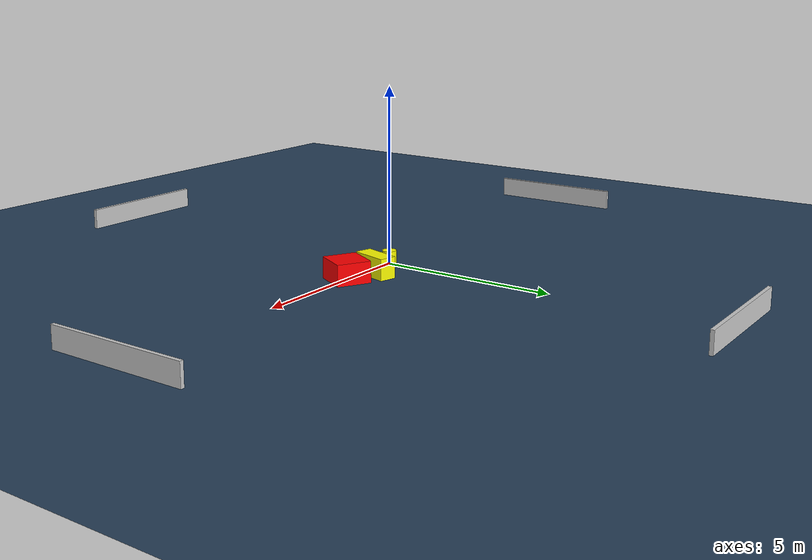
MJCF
<?xml version="1.0" ?>
<mujoco model="generated_environment">
  <option timestep="0.01" integrator="RK4" cone="elliptic"/>
  <default>
    <geom density="1"/>
  </default>
  <asset>
    <texture builtin="gradient" height="3072" name="skybox" rgb1="0.3 0.5 0.7" rgb2="0 0 0" type="skybox" width="512"/>
    <texture builtin="checker" height="300" name="groundplane" rgb1="0.2 0.3 0.4" rgb2="0.1 0.2 0.3" type="2d" width="300"/>
    <material name="groundplane" reflectance="0.2" texrepeat="5 5" texture="groundplane"/>
  </asset>
  <worldbody>
    <light dir="0 0 -1" directional="true" pos="0 0 1.5"/>
    <geom condim="3" friction="0.5 0.005 0.001" material="groundplane" name="floor" pos="0 0 0" size="0 0 0.05" type="plane"/>
    <body name="walls">
      <geom name="wall_1" condim="4" pos="-10.0 0.0 0.3" rgba="0.800000011920929 0.800000011920929 0.800000011920929 1.0" size="0.05 2.0 0.3" type="box"/>
      <geom name="wall_2" condim="4" pos="10.0 0.0 0.3" rgba="0.800000011920929 0.800000011920929 0.800000011920929 1.0" size="0.05 2.0 0.3" type="box"/>
      <geom name="wall_3" condim="4" pos="0.0 -10.0 0.3" rgba="0.800000011920929 0.800000011920929 0.800000011920929 1.0" size="2.0 0.05 0.3" type="box"/>
      <geom name="wall_4" condim="4" pos="0.0 10.0 0.3" rgba="0.800000011920929 0.800000011920929 0.800000011920929 1.0" size="2.0 0.05 0.3" type="box"/>
    </body>
    <body name="robot">
      <joint name="joint_x" type="slide" pos="0 0 0" axis="1 0 0"/>
      <joint name="joint_y" type="slide" pos="0 0 0" axis="0 1 0"/>
      <geom name="robot" type="cylinder" pos="0.0 0.0 0.2" size="0.2 0.2 0.0" mass="5.0" friction="1.0 0.005 0.0001" condim="4" rgba="1.0 1.0 0.0 1.0"/>
    </body>
    <body name="obstacle_1_movable">
      <geom name="obstacle_1_movable" condim="4" pos="1.165823286140468 0.3611013577798868 0.3" euler="0 0 345.00479297772824" friction="0.0 0.005 0.001" rgba="1.0 1.0 0.0 1.0" size="0.24308292413474503 0.537639359880576 0.3" type="box" mass="0.1"/>
      <joint type="free"/>
    </body>
    <body name="obstacle_2_static">
      <geom name="obstacle_2_static" condim="4" pos="1.9968723996912907 0.02193572791425603 0.3" euler="0 0 151.50752929893818" friction="0.0 0.005 0.001" rgba="1.0 0.0 0.0 1.0" size="0.4814443524249824 0.49511246530313496 0.3" type="box"/>
    </body>
  </worldbody>
  <actuator>
    <motor name="actuator_x" joint="joint_x" gear="1" ctrlrange="-1 1"/>
    <motor name="actuator_y" joint="joint_y" gear="1" ctrlrange="-1 1"/>
  </actuator>
</mujoco>
